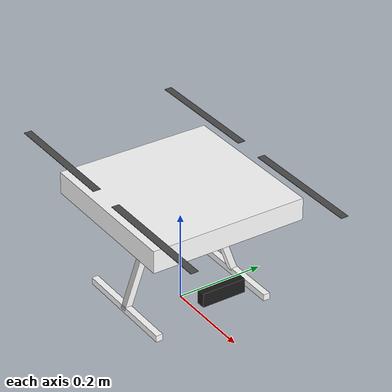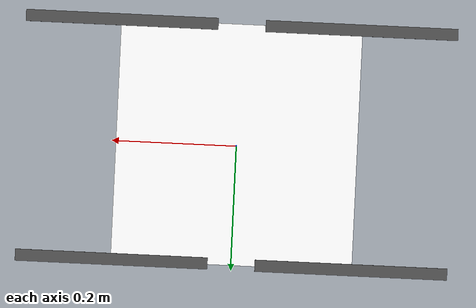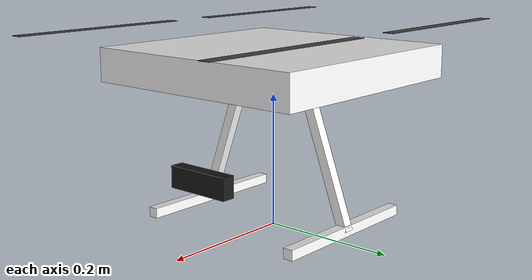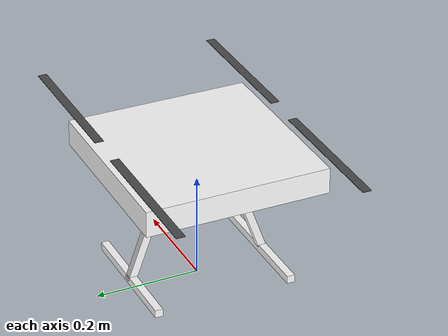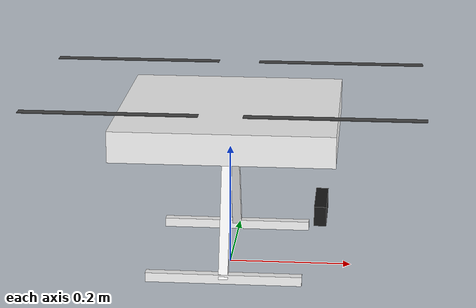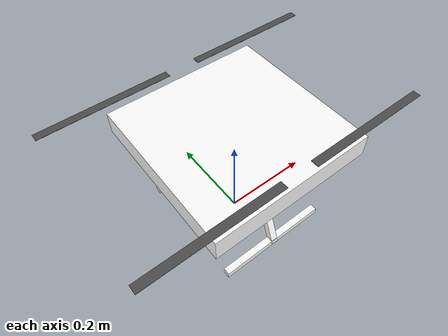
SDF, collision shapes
<?xml version="1.0" encoding="UTF-8"?>
<sdf version='1.9'>
  <model name='x500_oakd_pro_w_front'>

    <!-- ── Base x500 airframe ─────────────────────────────── -->
    <include merge='true'>
      <uri>x500</uri>
    </include>

    <!-- ── Camera body link ──────────────────────────────── -->
    <link name='cam_front_body'>
      <pose>.15 0 .10 0 0 0</pose>
      <inertial>
        <mass>0.072</mass>
        <inertia>
          <ixx>0.000060</ixx><ixy>0</ixy><ixz>0</ixz>
          <iyy>0.000010</iyy><iyz>0</iyz>
          <izz>0.000058</izz>
        </inertia>
      </inertial>
      <collision name='cam_front_body_collision'>
        <geometry>
          <box><size>0.020 0.100 0.032</size></box>
        </geometry>
      </collision>
      <visual name='cam_front_body_visual'>
        <geometry>
          <box><size>0.020 0.100 0.032</size></box>
        </geometry>
        <material>
          <ambient>0.1 0.1 0.1 1</ambient>
          <diffuse>0.1 0.1 0.1 1</diffuse>
        </material>
      </visual>

      <!-- ── Stereo LEFT sensor (y = +37.5 mm) ─────────── -->
      <sensor name='cam_front_left' type='camera'>
        <gz_frame_id>cam_front_left_frame</gz_frame_id>
        <pose>0 0.0375 0 0 0 0</pose>
        <camera>
          <horizontal_fov>1.4137</horizontal_fov>
          <image>
            <width>640</width>
            <height>400</height>
            <format>L8</format>
          </image>
          <clip><near>0.2</near><far>35.0</far></clip>
        </camera>
        <always_on>1</always_on>
        <update_rate>10</update_rate>
        <visualize>false</visualize>
        <topic>/world/default/model/x500_oakd_pro_w_front_0/link/cam_front_body/sensor/cam_front_left/image</topic>
      </sensor>

      <!-- ── Stereo RIGHT sensor (y = -37.5 mm) ────────── -->
      <sensor name='cam_front_right' type='camera'>
        <gz_frame_id>cam_front_right_frame</gz_frame_id>
        <pose>0 -0.0375 0 0 0 0</pose>
        <camera>
          <horizontal_fov>1.4137</horizontal_fov>
          <image>
            <width>640</width>
            <height>400</height>
            <format>L8</format>
          </image>
          <clip><near>0.2</near><far>35.0</far></clip>
        </camera>
        <always_on>1</always_on>
        <update_rate>10</update_rate>
        <visualize>false</visualize>
        <topic>/world/default/model/x500_oakd_pro_w_front_0/link/cam_front_body/sensor/cam_front_right/image</topic>
      </sensor>

      <!-- ── RGB sensor (centre) ───────────────────────── -->
      <sensor name='cam_front_rgb' type='camera'>
        <gz_frame_id>cam_front_rgb_frame</gz_frame_id>
        <pose>0 0 0 0 0 0</pose>
        <camera>
          <horizontal_fov>1.6581</horizontal_fov>
          <image>
            <width>640</width>
            <height>400</height>
            <format>RGB_INT8</format>
          </image>
          <clip><near>0.1</near><far>100.0</far></clip>
        </camera>
        <always_on>1</always_on>
        <update_rate>10</update_rate>
        <visualize>false</visualize>
        <topic>/world/default/model/x500_oakd_pro_w_front_0/link/cam_front_body/sensor/cam_front_rgb/image</topic>
      </sensor>

      <!-- ── Camera-body IMU (500 Hz) ─────────────────── -->
      <sensor name='cam_front_imu' type='imu'>
        <gz_frame_id>cam_front_body</gz_frame_id>
        <pose>0 0 0 0 0 0</pose>
        <imu>
          <angular_velocity>
            <x><noise type='gaussian'><mean>0</mean><stddev>0.00018665</stddev></noise></x>
            <y><noise type='gaussian'><mean>0</mean><stddev>0.00018665</stddev></noise></y>
            <z><noise type='gaussian'><mean>0</mean><stddev>0.00018665</stddev></noise></z>
          </angular_velocity>
          <linear_acceleration>
            <x><noise type='gaussian'><mean>0</mean><stddev>0.00186</stddev></noise></x>
            <y><noise type='gaussian'><mean>0</mean><stddev>0.00186</stddev></noise></y>
            <z><noise type='gaussian'><mean>0</mean><stddev>0.00186</stddev></noise></z>
          </linear_acceleration>
        </imu>
        <always_on>1</always_on>
        <update_rate>500</update_rate>
        <topic>/world/default/model/x500_oakd_pro_w_front_0/link/cam_front_body/sensor/cam_front_imu/imu</topic>
      </sensor>

    </link>

    <!-- ── Fixed joint: camera body → drone base ─────────── -->
    <joint name='cam_front_joint' type='fixed'>
      <parent>base_link</parent>
      <child>cam_front_body</child>
    </joint>

  </model>
</sdf>

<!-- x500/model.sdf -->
<sdf version='1.9'>
  <model name='x500-Base'>
    <pose>0 0 .24 0 0 0</pose>
    <self_collide>false</self_collide>
    <static>false</static>
    <link name="base_link">
      <inertial>
        <mass>2.0</mass>
        <inertia>
          <ixx>0.02166666666666667</ixx>
          <ixy>0</ixy>
          <ixz>0</ixz>
          <iyy>0.02166666666666667</iyy>
          <iyz>0</iyz>
          <izz>0.04000000000000001</izz>
        </inertia>
      </inertial>
      <gravity>true</gravity>
      <velocity_decay/>
      <visual name="base_link_visual">
        <pose>0 0 .025 0 0 3.141592654</pose>
        <geometry>
          <mesh>
            <scale>1 1 1</scale>
            <uri>model://x500-Base/meshes/NXP-HGD-CF.dae</uri>
          </mesh>
        </geometry>
      </visual>
      <visual name="5010_motor_base_0">
        <pose>0.174 0.174 .032 0 0 -.45</pose>
        <geometry>
          <mesh>
            <scale>1 1 1</scale>
            <uri>model://x500-Base/meshes/5010Base.dae</uri>
          </mesh>
        </geometry>
      </visual>
      <visual name="5010_motor_base_1">
        <pose>-0.174 0.174 .032 0 0 -.45</pose>
        <geometry>
          <mesh>
            <scale>1 1 1</scale>
            <uri>model://x500-Base/meshes/5010Base.dae</uri>
          </mesh>
        </geometry>
      </visual>
      <visual name="5010_motor_base_2">
        <pose>0.174 -0.174 .032 0 0 -.45</pose>
        <geometry>
          <mesh>
            <scale>1 1 1</scale>
            <uri>model://x500-Base/meshes/5010Base.dae</uri>
          </mesh>
        </geometry>
      </visual>
      <visual name="5010_motor_base_3">
        <pose>-0.174 -0.174 .032 0 0 -.45</pose>
        <geometry>
          <mesh>
            <scale>1 1 1</scale>
            <uri>model://x500-Base/meshes/5010Base.dae</uri>
          </mesh>
        </geometry>
      </visual>
      <visual name="NXP_FMUK66_FRONT">
        <pose>0.047 .001 .043 1 0 1.57</pose>
        <cast_shadows>false</cast_shadows>
        <geometry>
          <plane>
            <normal>0 0 1</normal>
            <size>.013 .007</size>
          </plane>
        </geometry>
        <material>
          <diffuse>1.0 1.0 1.0</diffuse>
          <specular>1.0 1.0 1.0</specular>
          <pbr>
            <metal>
              <albedo_map>model://x500-Base/materials/textures/nxp.png</albedo_map>
            </metal>
          </pbr>
        </material>
      </visual>
      <visual name="NXP_FMUK66_TOP">
        <pose>-0.023 0 .0515 0 0 -1.57</pose>
        <cast_shadows>false</cast_shadows>
        <geometry>
          <plane>
            <normal>0 0 1</normal>
            <size>.013 .007</size>
          </plane>
        </geometry>
        <material>
          <diffuse>1.0 1.0 1.0</diffuse>
          <specular>1.0 1.0 1.0</specular>
          <pbr>
            <metal>
              <albedo_map>model://x500-Base/materials/textures/nxp.png</albedo_map>
            </metal>
          </pbr>
        </material>
      </visual>
      <visual name="RDDRONE_FMUK66_TOP">
        <pose>-.03 0 .0515 0 0 -1.57</pose>
        <cast_shadows>false</cast_shadows>
        <geometry>
          <plane>
            <normal>0 0 1</normal>
            <size>.032 .0034</size>
          </plane>
        </geometry>
        <material>
          <diffuse>1.0 1.0 1.0</diffuse>
          <specular>1.0 1.0 1.0</specular>
          <pbr>
            <metal>
              <albedo_map>model://x500-Base/materials/textures/rd.png</albedo_map>
            </metal>
          </pbr>
        </material>
      </visual>
      <collision name="base_link_collision_0">
        <pose>0 0 .007 0 0 0</pose>
        <geometry>
          <box>
            <size>0.35355339059327373 0.35355339059327373 0.05</size>
          </box>
        </geometry>
        <surface>
          <contact>
            <ode>
              <min_depth>0.001</min_depth>
              <max_vel>0</max_vel>
            </ode>
          </contact>
          <friction>
            <ode/>
          </friction>
        </surface>
      </collision>
      <collision name="base_link_collision_1">
        <pose>0 -0.098 -.123 -0.35 0 0</pose>
        <geometry>
          <box>
            <size>0.015 0.015 0.21</size>
          </box>
        </geometry>
        <surface>
          <contact>
            <ode>
              <min_depth>0.001</min_depth>
              <max_vel>0</max_vel>
            </ode>
          </contact>
          <friction>
            <ode/>
          </friction>
        </surface>
      </collision>
      <collision name="base_link_collision_2">
        <pose>0 0.098 -.123 0.35 0 0</pose>
        <geometry>
          <box>
            <size>0.015 0.015 0.21</size>
          </box>
        </geometry>
        <surface>
          <contact>
            <ode>
              <min_depth>0.001</min_depth>
              <max_vel>0</max_vel>
            </ode>
          </contact>
          <friction>
            <ode/>
          </friction>
        </surface>
      </collision>
      <collision name="base_link_collision_3">
        <pose>0 -0.132 -.2195 0 0 0</pose>
        <geometry>
          <box>
            <size>0.25 0.015 0.015</size>
          </box>
        </geometry>
        <surface>
          <contact>
            <ode>
              <min_depth>0.001</min_depth>
              <max_vel>0</max_vel>
            </ode>
          </contact>
          <friction>
            <ode/>
          </friction>
        </surface>
      </collision>
      <collision name="base_link_collision_4">
        <pose>0 0.132 -.2195 0 0 0</pose>
        <geometry>
          <box>
            <size>0.25 0.015 0.015</size>
          </box>
        </geometry>
        <surface>
          <contact>
            <ode>
              <min_depth>0.001</min_depth>
              <max_vel>0</max_vel>
            </ode>
          </contact>
          <friction>
            <ode/>
          </friction>
        </surface>
      </collision>
      <sensor name="imu_sensor" type="imu">
        <always_on>1</always_on>
        <update_rate>250</update_rate>
      </sensor>
    </link>
    <link name="rotor_0">
      <gravity>true</gravity>
      <self_collide>false</self_collide>
      <velocity_decay/>
      <pose>0.174 -0.174 0.06 0 0 0</pose>
      <inertial>
          <mass>0.016076923076923075</mass>
          <inertia>
            <ixx>3.8464910483993325e-07</ixx>
            <iyy>2.6115851691700804e-05</iyy>
            <izz>2.649858234714004e-05</izz>
          </inertia>
        </inertial>
      <visual name="rotor_0_visual">
        <pose>-0.022 -0.14638461538461536 -0.016 0 0 0</pose>
        <geometry>
          <mesh>
            <scale>0.8461538461538461 0.8461538461538461 0.8461538461538461</scale>
            <uri>model://x500-Base/meshes/1345_prop_ccw.stl</uri>
          </mesh>
        </geometry>
        <material>
          <script>
            <name>Gazebo/DarkGrey</name>
            <uri>file://media/materials/scripts/gazebo.material</uri>
          </script>
        </material>
      </visual>
      <visual name="rotor_0_visual_motor_bell">
        <pose>0 0 -.032 0 0 0</pose>
        <geometry>
          <mesh>
            <scale>1 1 1</scale>
            <uri>model://x500-Base/meshes/5010Bell.dae</uri>
          </mesh>
        </geometry>
      </visual>
      <collision name="rotor_0_collision">
        <pose>0 0 0 0 0 0 </pose>
        <geometry>
          <box>
            <size>0.2792307692307692 0.016923076923076923 0.0008461538461538462</size>
          </box>
        </geometry>
        <surface>
          <contact>
            <ode>
              <min_depth>0.001</min_depth>
              <max_vel>0</max_vel>
            </ode>
          </contact>
          <friction>
            <ode/>
          </friction>
        </surface>
      </collision>
    </link>
    <joint name="rotor_0_joint" type="revolute">
      <parent>base_link</parent>
      <child>rotor_0</child>
      <axis>
        <xyz>0 0 1</xyz>
        <limit>
          <lower>-1e+16</lower>
          <upper>1e+16</upper>
        </limit>
        <dynamics>
          <spring_reference>0</spring_reference>
          <spring_stiffness>0</spring_stiffness>
        </dynamics>
        <use_parent_model_frame>1</use_parent_model_frame>
      </axis>
    </joint>
    <link name="rotor_1">
      <gravity>true</gravity>
      <self_collide>false</self_collide>
      <velocity_decay/>
      <pose>-0.174 0.174 0.06 0 0 0</pose>
      <inertial>
          <mass>0.016076923076923075</mass>
          <inertia>
            <ixx>3.8464910483993325e-07</ixx>
            <iyy>2.6115851691700804e-05</iyy>
            <izz>2.649858234714004e-05</izz>
          </inertia>
        </inertial>
      <visual name="rotor_1_visual">
        <pose>-0.022 -0.14638461538461536 -0.016 0 0 0</pose>
        <geometry>
          <mesh>
            <scale>0.8461538461538461 0.8461538461538461 0.8461538461538461</scale>
            <uri>model://x500-Base/meshes/1345_prop_ccw.stl</uri>
          </mesh>
        </geometry>
        <material>
          <script>
            <name>Gazebo/DarkGrey</name>
            <uri>file://media/materials/scripts/gazebo.material</uri>
          </script>
        </material>
      </visual>
      <visual name="rotor_1_visual_motor_top">
        <pose>0 0 -.032 0 0 0</pose>
        <geometry>
          <mesh>
            <scale>1 1 1</scale>
            <uri>model://x500-Base/meshes/5010Bell.dae</uri>
          </mesh>
        </geometry>
      </visual>
      <collision name="rotor_1_collision">
        <pose>0 0 0 0 0 0 </pose>
        <geometry>
          <box>
            <size>0.2792307692307692 0.016923076923076923 0.0008461538461538462</size>
          </box>
        </geometry>
        <surface>
          <contact>
            <ode>
              <min_depth>0.001</min_depth>
              <max_vel>0</max_vel>
            </ode>
          </contact>
          <friction>
            <ode/>
          </friction>
        </surface>
      </collision>
    </link>
    <joint name="rotor_1_joint" type="revolute">
      <parent>base_link</parent>
      <child>rotor_1</child>
      <axis>
        <xyz>0 0 1</xyz>
        <limit>
          <lower>-1e+16</lower>
          <upper>1e+16</upper>
        </limit>
        <dynamics>
          <spring_reference>0</spring_reference>
          <spring_stiffness>0</spring_stiffness>
        </dynamics>
        <use_parent_model_frame>1</use_parent_model_frame>
      </axis>
    </joint>
    <link name="rotor_2">
      <gravity>true</gravity>
      <self_collide>false</self_collide>
      <velocity_decay/>
      <pose>0.174 0.174 0.06 0 0 0</pose>
      <inertial>
          <mass>0.016076923076923075</mass>
          <inertia>
            <ixx>3.8464910483993325e-07</ixx>
            <iyy>2.6115851691700804e-05</iyy>
            <izz>2.649858234714004e-05</izz>
          </inertia>
        </inertial>
      <visual name="rotor_2_visual">
        <pose>-0.022 -0.14638461538461536 -0.016 0 0 0</pose>
        <geometry>
          <mesh>
            <scale>0.8461538461538461 0.8461538461538461 0.8461538461538461</scale>
            <uri>model://x500-Base/meshes/1345_prop_cw.stl</uri>
          </mesh>
        </geometry>
        <material>
          <script>
            <name>Gazebo/DarkGrey</name>
            <uri>file://media/materials/scripts/gazebo.material</uri>
          </script>
        </material>
      </visual>
      <visual name="rotor_2_visual_motor_top">
        <pose>0 0 -.032 0 0 0</pose>
        <geometry>
          <mesh>
            <scale>1 1 1</scale>
            <uri>model://x500-Base/meshes/5010Bell.dae</uri>
          </mesh>
        </geometry>
      </visual>
      <collision name="rotor_2_collision">
        <pose>0 0 0 0 0 0 </pose>
        <geometry>
          <box>
            <size>0.2792307692307692 0.016923076923076923 0.0008461538461538462</size>
          </box>
        </geometry>
        <surface>
          <contact>
            <ode>
              <min_depth>0.001</min_depth>
              <max_vel>0</max_vel>
            </ode>
          </contact>
          <friction>
            <ode/>
          </friction>
        </surface>
      </collision>
    </link>
    <joint name="rotor_2_joint" type="revolute">
      <parent>base_link</parent>
      <child>rotor_2</child>
      <axis>
        <xyz>0 0 1</xyz>
        <limit>
          <lower>-1e+16</lower>
          <upper>1e+16</upper>
        </limit>
        <dynamics>
          <spring_reference>0</spring_reference>
          <spring_stiffness>0</spring_stiffness>
        </dynamics>
        <use_parent_model_frame>1</use_parent_model_frame>
      </axis>
    </joint>
    <link name="rotor_3">
      <gravity>true</gravity>
      <self_collide>false</self_collide>
      <velocity_decay/>
      <pose>-0.174 -0.174 0.06 0 0 0</pose>
      <inertial>
          <mass>0.016076923076923075</mass>
          <inertia>
            <ixx>3.8464910483993325e-07</ixx>
            <iyy>2.6115851691700804e-05</iyy>
            <izz>2.649858234714004e-05</izz>
          </inertia>
        </inertial>
      <visual name="rotor_3_visual">
        <pose>-0.022 -0.14638461538461536 -0.016 0 0 0</pose>
        <geometry>
          <mesh>
            <scale>0.8461538461538461 0.8461538461538461 0.8461538461538461</scale>
            <uri>model://x500-Base/meshes/1345_prop_cw.stl</uri>
          </mesh>
        </geometry>
        <material>
          <script>
            <name>Gazebo/DarkGrey</name>
            <uri>file://media/materials/scripts/gazebo.material</uri>
          </script>
        </material>
      </visual>
      <visual name="rotor_3_visual_motor_top">
        <pose>0 0 -.032 0 0 0</pose>
        <geometry>
          <mesh>
            <scale>1 1 1</scale>
            <uri>model://x500-Base/meshes/5010Bell.dae</uri>
          </mesh>
        </geometry>
      </visual>
      <collision name="rotor_3_collision">
        <pose>0 0 0 0 0 0 </pose>
        <geometry>
          <box>
            <size>0.2792307692307692 0.016923076923076923 0.0008461538461538462</size>
          </box>
        </geometry>
        <surface>
          <contact>
            <ode>
              <min_depth>0.001</min_depth>
              <max_vel>0</max_vel>
            </ode>
          </contact>
          <friction>
            <ode/>
          </friction>
        </surface>
      </collision>
    </link>
    <joint name="rotor_3_joint" type="revolute">
      <parent>base_link</parent>
      <child>rotor_3</child>
      <axis>
        <xyz>0 0 1</xyz>
        <limit>
          <lower>-1e+16</lower>
          <upper>1e+16</upper>
        </limit>
        <dynamics>
          <spring_reference>0</spring_reference>
          <spring_stiffness>0</spring_stiffness>
        </dynamics>
        <use_parent_model_frame>1</use_parent_model_frame>
      </axis>
    </joint>
    <!-- FOR UPDATED ignition::gazebo::systems::MulticopterMotorModel with https://github.com/gazebosim/gz-sim/pull/1689 or equivalent -->
    <plugin filename="ignition-gazebo-multicopter-motor-model-system" name="ignition::gazebo::systems::MulticopterMotorModel">
      <jointName>rotor_0_joint</jointName>
      <linkName>rotor_0</linkName>
      <turningDirection>ccw</turningDirection>
      <timeConstantUp>0.0125</timeConstantUp>
      <timeConstantDown>0.025</timeConstantDown>
      <maxRotVelocity>1000.0</maxRotVelocity>
      <motorConstant>8.54858e-06</motorConstant>
      <momentConstant>0.016</momentConstant>
      <commandSubTopic>command/motor_speed</commandSubTopic>
      <motorNumber>0</motorNumber>
      <rotorDragCoefficient>8.06428e-05</rotorDragCoefficient>
      <rollingMomentCoefficient>1e-06</rollingMomentCoefficient>
      <rotorVelocitySlowdownSim>10</rotorVelocitySlowdownSim>
      <motorType>velocity</motorType>
    </plugin>
    <plugin filename="ignition-gazebo-multicopter-motor-model-system" name="ignition::gazebo::systems::MulticopterMotorModel">
      <jointName>rotor_1_joint</jointName>
      <linkName>rotor_1</linkName>
      <turningDirection>ccw</turningDirection>
      <timeConstantUp>0.0125</timeConstantUp>
      <timeConstantDown>0.025</timeConstantDown>
      <maxRotVelocity>1000.0</maxRotVelocity>
      <motorConstant>8.54858e-06</motorConstant>
      <momentConstant>0.016</momentConstant>
      <commandSubTopic>command/motor_speed</commandSubTopic>
      <motorNumber>1</motorNumber>
      <rotorDragCoefficient>8.06428e-05</rotorDragCoefficient>
      <rollingMomentCoefficient>1e-06</rollingMomentCoefficient>
      <rotorVelocitySlowdownSim>10</rotorVelocitySlowdownSim>
      <motorType>velocity</motorType>
    </plugin>
    <plugin filename="ignition-gazebo-multicopter-motor-model-system" name="ignition::gazebo::systems::MulticopterMotorModel">
      <jointName>rotor_2_joint</jointName>
      <linkName>rotor_2</linkName>
      <turningDirection>cw</turningDirection>
      <timeConstantUp>0.0125</timeConstantUp>
      <timeConstantDown>0.025</timeConstantDown>
      <maxRotVelocity>1000.0</maxRotVelocity>
      <motorConstant>8.54858e-06</motorConstant>
      <momentConstant>0.016</momentConstant>
      <commandSubTopic>command/motor_speed</commandSubTopic>
      <motorNumber>2</motorNumber>
      <rotorDragCoefficient>8.06428e-05</rotorDragCoefficient>
      <rollingMomentCoefficient>1e-06</rollingMomentCoefficient>
      <rotorVelocitySlowdownSim>10</rotorVelocitySlowdownSim>
      <motorType>velocity</motorType>
    </plugin>
    <plugin filename="ignition-gazebo-multicopter-motor-model-system" name="ignition::gazebo::systems::MulticopterMotorModel">
      <jointName>rotor_3_joint</jointName>
      <linkName>rotor_3</linkName>
      <turningDirection>cw</turningDirection>
      <timeConstantUp>0.0125</timeConstantUp>
      <timeConstantDown>0.025</timeConstantDown>
      <maxRotVelocity>1000.0</maxRotVelocity>
      <motorConstant>8.54858e-06</motorConstant>
      <momentConstant>0.016</momentConstant>
      <commandSubTopic>command/motor_speed</commandSubTopic>
      <motorNumber>3</motorNumber>
      <rotorDragCoefficient>8.06428e-05</rotorDragCoefficient>
      <rollingMomentCoefficient>1e-06</rollingMomentCoefficient>
      <rotorVelocitySlowdownSim>10</rotorVelocitySlowdownSim>
      <motorType>velocity</motorType>
    </plugin>
  </model>
</sdf>
